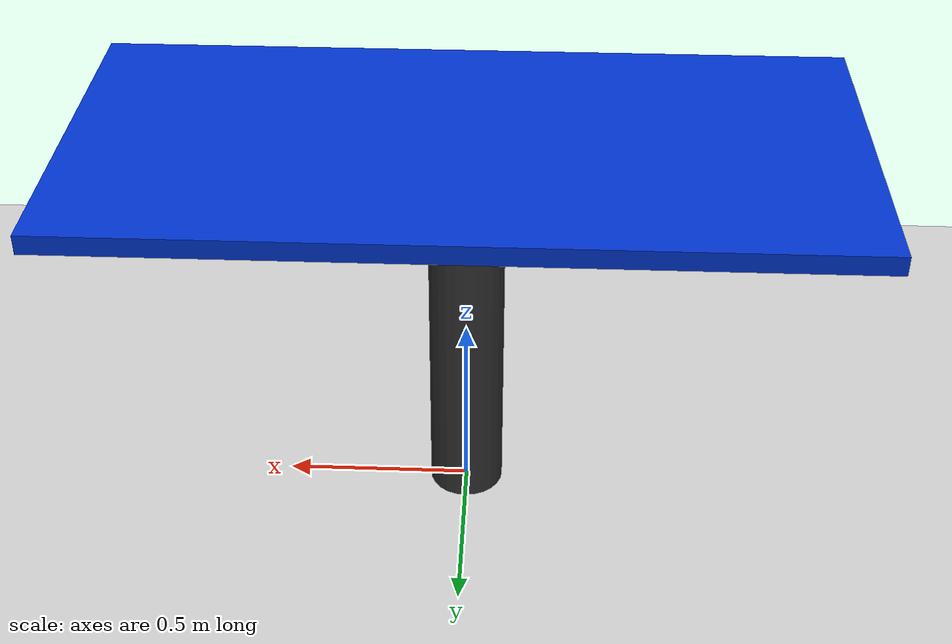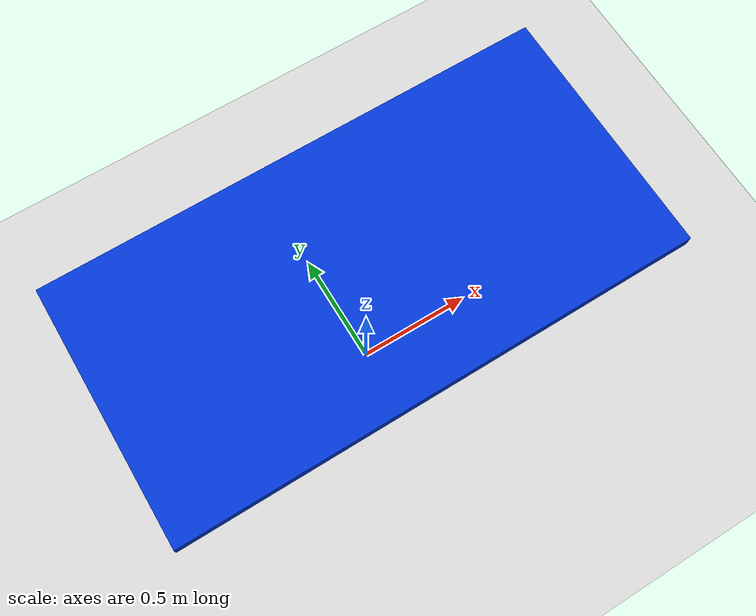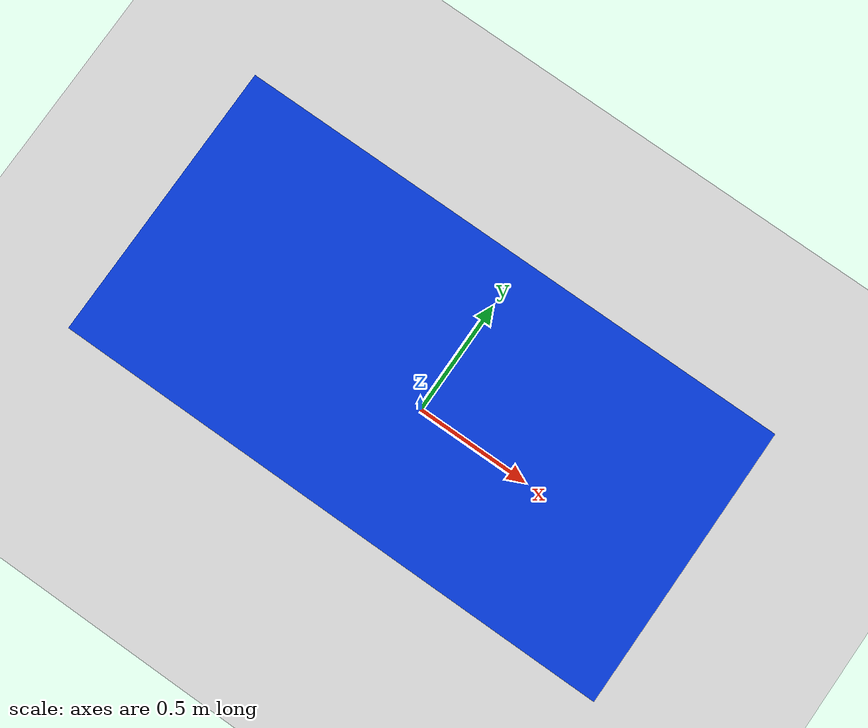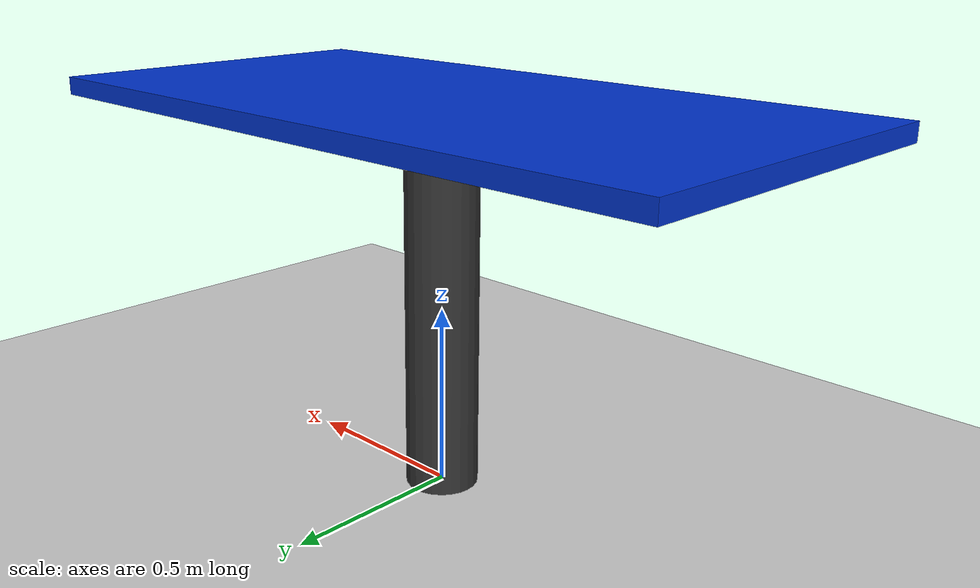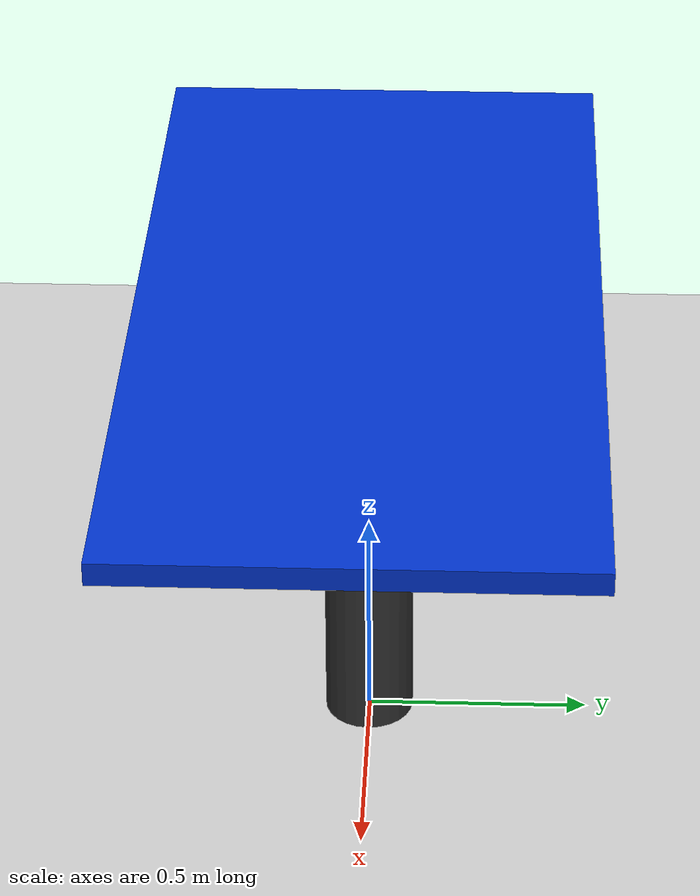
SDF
<?xml version="1.0" ?>
<sdf version="1.9">
  <world name="tracker_world">

    <physics name="tracker_physics" type="ode">
      <max_step_size>0.001</max_step_size>
      <real_time_factor>1.0</real_time_factor>
    </physics>

    <plugin filename="gz-sim-physics-system"
            name="gz::sim::systems::Physics"/>
    <plugin filename="gz-sim-user-commands-system"
            name="gz::sim::systems::UserCommands"/>
    <plugin filename="gz-sim-scene-broadcaster-system"
            name="gz::sim::systems::SceneBroadcaster"/>

    <light type="directional" name="sun">
      <cast_shadows>true</cast_shadows>
      <pose>0 0 10 0 0 0</pose>
      <diffuse>0.8 0.8 0.8 1</diffuse>
      <specular>0.2 0.2 0.2 1</specular>
      <direction>-0.5 0.5 -1.0</direction>
    </light>

    <model name="ground_plane">
      <static>true</static>
      <link name="ground_link">
        <collision name="ground_collision">
          <geometry>
            <plane>
              <normal>0 0 1</normal>
              <size>10 10</size>
            </plane>
          </geometry>
        </collision>

        <visual name="ground_visual">
          <geometry>
            <plane>
              <normal>0 0 1</normal>
              <size>10 10</size>
            </plane>
          </geometry>
          <material>
            <ambient>0.8 0.8 0.8 1</ambient>
            <diffuse>0.8 0.8 0.8 1</diffuse>
          </material>
        </visual>
      </link>
    </model>

    <model name="solar_tracker">

      <link name="base_pole">
        <collision name="base_collision">
          <pose>0 0 0.5 0 0 0</pose>
          <geometry>
            <cylinder>
              <radius>0.1</radius>
              <length>1.0</length>
            </cylinder>
          </geometry>
        </collision>

        <visual name="base_visual">
          <pose>0 0 0.5 0 0 0</pose>
          <geometry>
            <cylinder>
              <radius>0.1</radius>
              <length>1.0</length>
            </cylinder>
          </geometry>
          <material>
            <ambient>0.2 0.2 0.2 1</ambient>
            <diffuse>0.2 0.2 0.2 1</diffuse>
          </material>
        </visual>

        <inertial>
          <mass>5.0</mass>
          <inertia>
            <ixx>0.5</ixx>
            <ixy>0</ixy>
            <ixz>0</ixz>
            <iyy>0.5</iyy>
            <iyz>0</iyz>
            <izz>0.05</izz>
          </inertia>
        </inertial>
      </link>

      <link name="panel_link">
        <pose>0 0 1.05 0 0 0</pose>

        <collision name="panel_collision">
          <geometry>
            <box>
              <size>2.0 1.0 0.05</size>
            </box>
          </geometry>
        </collision>

        <visual name="panel_visual">
          <geometry>
            <box>
              <size>2.0 1.0 0.05</size>
            </box>
          </geometry>
          <material>
            <ambient>0.0 0.2 0.8 1</ambient>
            <diffuse>0.0 0.2 0.8 1</diffuse>
          </material>
        </visual>

        <inertial>
          <mass>10.0</mass>
          <inertia>
            <ixx>1.0</ixx>
            <ixy>0</ixy>
            <ixz>0</ixz>
            <iyy>2.0</iyy>
            <iyz>0</iyz>
            <izz>3.0</izz>
          </inertia>
        </inertial>
      </link>

      <joint name="fixed_to_ground" type="fixed">
        <parent>world</parent>
        <child>base_pole</child>
      </joint>

      <joint name="tracking_joint" type="revolute">
        <pose relative_to="base_pole">0 0 1.05 0 0 0</pose>
        <parent>base_pole</parent>
        <child>panel_link</child>

        <axis>
          <xyz>0 1 0</xyz>
          <limit>
            <lower>-1.57</lower>
            <upper>1.57</upper>
            <effort>100.0</effort>
            <velocity>1.0</velocity>
          </limit>
          <dynamics>
            <friction>0.1</friction>
            <damping>0.5</damping>
          </dynamics>
        </axis>
      </joint>

      <plugin
        filename="gz-sim-joint-position-controller-system"
        name="gz::sim::systems::JointPositionController">
        <joint_name>tracking_joint</joint_name>
        <topic>/model/solar_tracker/joint/tracking_joint/cmd_pos</topic>
        <p_gain>18.0</p_gain>
        <i_gain>0.0</i_gain>
        <d_gain>11.5</d_gain>
        <cmd_max>100.0</cmd_max>
        <cmd_min>-100.0</cmd_min>
      </plugin>

      <plugin
        filename="gz-sim-joint-state-publisher-system"
        name="gz::sim::systems::JointStatePublisher">
        <joint_name>tracking_joint</joint_name>
      </plugin>

      <plugin
        filename="gz-sim-apply-joint-force-system"
        name="gz::sim::systems::ApplyJointForce">
        <joint_name>tracking_joint</joint_name>
      </plugin>

    </model>
  </world>
</sdf>
